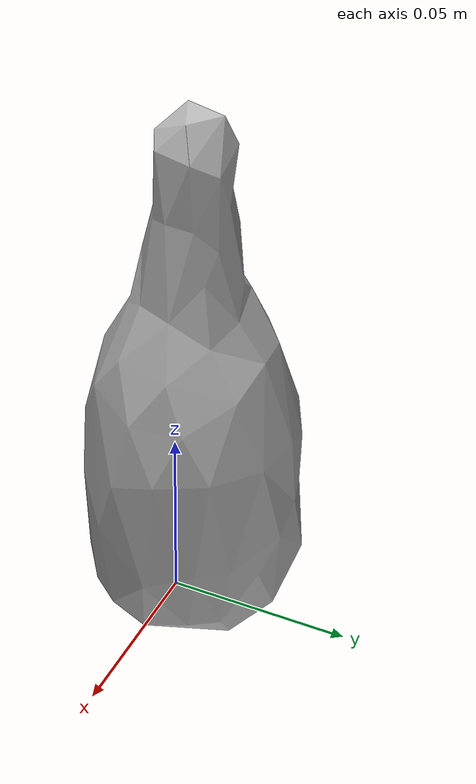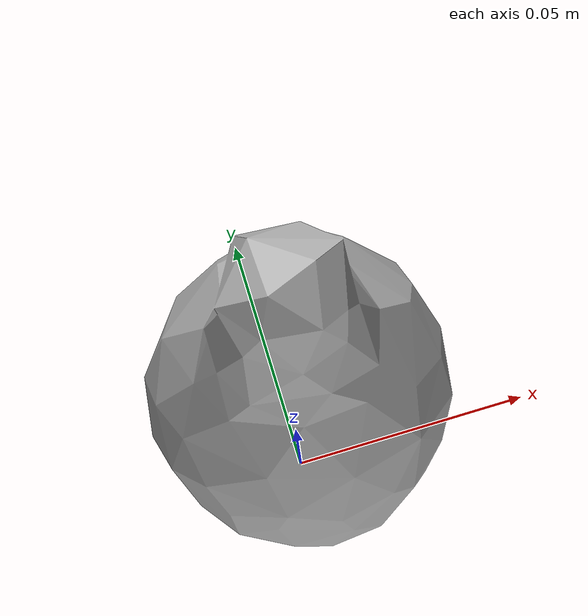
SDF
<?xml version='1.0'?>
<sdf version="1.4">
  <model name="crystal_hot_sauce">
    <static>false</static>
    <link name="link">
      <inertial>
        <pose>0.0041675484590159365 0.008099496411546392 0.06263978739690014 -0.00944444574488543 0.0013273588109359313 1.8689541973889192</pose>
        <mass>0.02774629911273658</mass>
        <inertia>
          <ixx>4.243827072019679e-05</ixx>
          <ixy>1.940928287255088e-21</ixy>
          <ixz>-3.946235036374847e-21</ixz>
          <iyy>4.195260381759914e-05</iyy>
          <iyz>-3.3315649923420713e-21</iyz>
          <izz>1.012865575775782e-05</izz>
        </inertia>
      </inertial>
      <collision name="collision">
        <geometry>
          <mesh>
            <!-- Use a downsampled mesh for collisions -->
            <uri>model:///crystal_hot_sauce/crystal_hot_sauce_250_collision.obj</uri>
	        </mesh>
        </geometry>
        <surface>
      </surface>
      </collision>
      <visual name="visual">
        <geometry>
          <mesh>
            <uri>model:///crystal_hot_sauce/optimized_tsdf_texture_mapped_mesh.obj</uri>
	        </mesh>
        </geometry>
        <material>
          <script>
            <uri>model:///crystal_hot_sauce/crystal_hot_sauce.material</uri>
            <name>crystal_hot_sauce</name>
          </script>
        </material>
      </visual>
    </link>
  </model>
</sdf>
